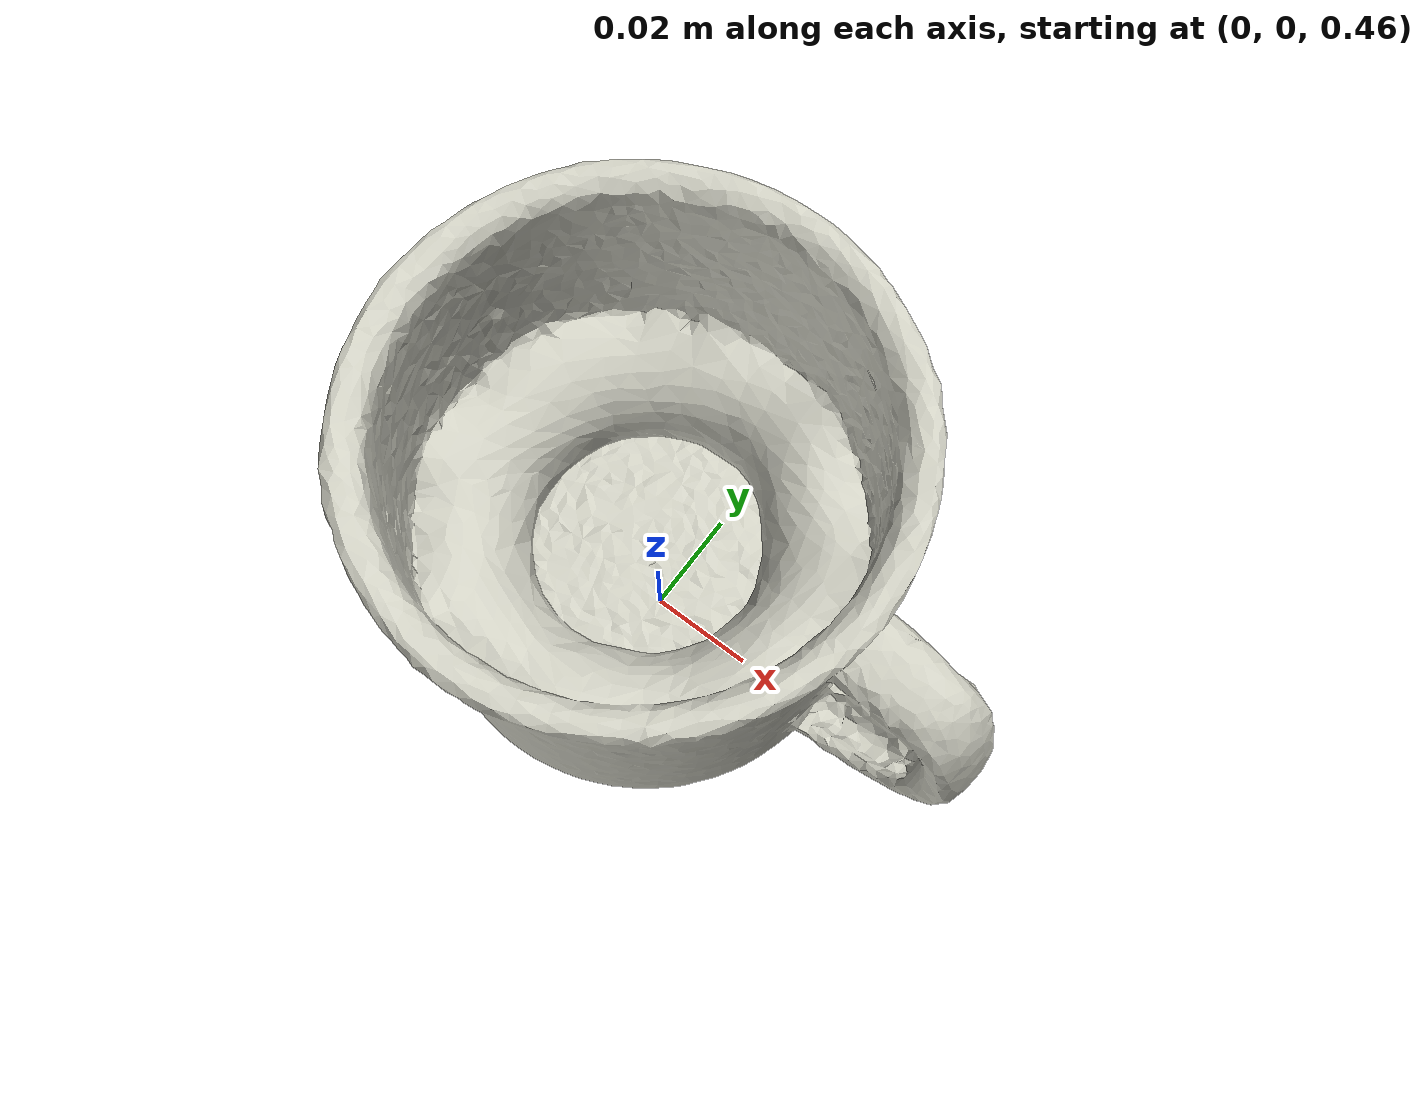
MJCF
<mujoco>
  <asset>
    <mesh name="025_mug_visual" file="objects/025_mug/visual.stl" />
    <mesh name="025_mug_col_00" file="objects/025_mug/collision/025_mug_00.stl" />
    <mesh name="025_mug_col_01" file="objects/025_mug/collision/025_mug_01.stl" />
    <mesh name="025_mug_col_02" file="objects/025_mug/collision/025_mug_02.stl" />
    <mesh name="025_mug_col_03" file="objects/025_mug/collision/025_mug_03.stl" />
    <mesh name="025_mug_col_04" file="objects/025_mug/collision/025_mug_04.stl" />
    <mesh name="025_mug_col_05" file="objects/025_mug/collision/025_mug_05.stl" />
    <mesh name="025_mug_col_06" file="objects/025_mug/collision/025_mug_06.stl" />
    <mesh name="025_mug_col_07" file="objects/025_mug/collision/025_mug_07.stl" />
    <mesh name="025_mug_col_08" file="objects/025_mug/collision/025_mug_08.stl" />
    <mesh name="025_mug_col_09" file="objects/025_mug/collision/025_mug_09.stl" />
    <mesh name="025_mug_col_10" file="objects/025_mug/collision/025_mug_10.stl" />
    <mesh name="025_mug_col_11" file="objects/025_mug/collision/025_mug_11.stl" />
    <mesh name="025_mug_col_12" file="objects/025_mug/collision/025_mug_12.stl" />
    <mesh name="025_mug_col_13" file="objects/025_mug/collision/025_mug_13.stl" />
    <mesh name="025_mug_col_14" file="objects/025_mug/collision/025_mug_14.stl" />
    <mesh name="025_mug_col_15" file="objects/025_mug/collision/025_mug_15.stl" />
    <mesh name="025_mug_col_16" file="objects/025_mug/collision/025_mug_16.stl" />
    <mesh name="025_mug_col_17" file="objects/025_mug/collision/025_mug_17.stl" />
    <mesh name="025_mug_col_18" file="objects/025_mug/collision/025_mug_18.stl" />
    <mesh name="025_mug_col_19" file="objects/025_mug/collision/025_mug_19.stl" />
    <mesh name="025_mug_col_20" file="objects/025_mug/collision/025_mug_20.stl" />
    <mesh name="025_mug_col_21" file="objects/025_mug/collision/025_mug_21.stl" />
    <mesh name="025_mug_col_22" file="objects/025_mug/collision/025_mug_22.stl" />
    <mesh name="025_mug_col_23" file="objects/025_mug/collision/025_mug_23.stl" />
    <mesh name="025_mug_col_24" file="objects/025_mug/collision/025_mug_24.stl" />
    <mesh name="025_mug_col_25" file="objects/025_mug/collision/025_mug_25.stl" />
    <mesh name="025_mug_col_26" file="objects/025_mug/collision/025_mug_26.stl" />
    <mesh name="025_mug_col_27" file="objects/025_mug/collision/025_mug_27.stl" />
    <mesh name="025_mug_col_28" file="objects/025_mug/collision/025_mug_28.stl" />
    <mesh name="025_mug_col_29" file="objects/025_mug/collision/025_mug_29.stl" />
    <mesh name="025_mug_col_30" file="objects/025_mug/collision/025_mug_30.stl" />
    <mesh name="025_mug_col_31" file="objects/025_mug/collision/025_mug_31.stl" />
  </asset>
  <worldbody>
    <body name="025_mug" pos="0 0 0.5">
      <freejoint name="025_mug_free" />
      <geom type="mesh" mesh="025_mug_visual" contype="0" conaffinity="0" group="2" rgba="0.8 0.8 0.75 1" />
      <geom type="mesh" mesh="025_mug_col_00" group="3" condim="4" friction="0.8 0.01 0.001" density="1000" solref="0.005 1" solimp="0.9 0.98 0.001" />
      <geom type="mesh" mesh="025_mug_col_01" group="3" condim="4" friction="0.8 0.01 0.001" density="1000" solref="0.005 1" solimp="0.9 0.98 0.001" />
      <geom type="mesh" mesh="025_mug_col_02" group="3" condim="4" friction="0.8 0.01 0.001" density="1000" solref="0.005 1" solimp="0.9 0.98 0.001" />
      <geom type="mesh" mesh="025_mug_col_03" group="3" condim="4" friction="0.8 0.01 0.001" density="1000" solref="0.005 1" solimp="0.9 0.98 0.001" />
      <geom type="mesh" mesh="025_mug_col_04" group="3" condim="4" friction="0.8 0.01 0.001" density="1000" solref="0.005 1" solimp="0.9 0.98 0.001" />
      <geom type="mesh" mesh="025_mug_col_05" group="3" condim="4" friction="0.8 0.01 0.001" density="1000" solref="0.005 1" solimp="0.9 0.98 0.001" />
      <geom type="mesh" mesh="025_mug_col_06" group="3" condim="4" friction="0.8 0.01 0.001" density="1000" solref="0.005 1" solimp="0.9 0.98 0.001" />
      <geom type="mesh" mesh="025_mug_col_07" group="3" condim="4" friction="0.8 0.01 0.001" density="1000" solref="0.005 1" solimp="0.9 0.98 0.001" />
      <geom type="mesh" mesh="025_mug_col_08" group="3" condim="4" friction="0.8 0.01 0.001" density="1000" solref="0.005 1" solimp="0.9 0.98 0.001" />
      <geom type="mesh" mesh="025_mug_col_09" group="3" condim="4" friction="0.8 0.01 0.001" density="1000" solref="0.005 1" solimp="0.9 0.98 0.001" />
      <geom type="mesh" mesh="025_mug_col_10" group="3" condim="4" friction="0.8 0.01 0.001" density="1000" solref="0.005 1" solimp="0.9 0.98 0.001" />
      <geom type="mesh" mesh="025_mug_col_11" group="3" condim="4" friction="0.8 0.01 0.001" density="1000" solref="0.005 1" solimp="0.9 0.98 0.001" />
      <geom type="mesh" mesh="025_mug_col_12" group="3" condim="4" friction="0.8 0.01 0.001" density="1000" solref="0.005 1" solimp="0.9 0.98 0.001" />
      <geom type="mesh" mesh="025_mug_col_13" group="3" condim="4" friction="0.8 0.01 0.001" density="1000" solref="0.005 1" solimp="0.9 0.98 0.001" />
      <geom type="mesh" mesh="025_mug_col_14" group="3" condim="4" friction="0.8 0.01 0.001" density="1000" solref="0.005 1" solimp="0.9 0.98 0.001" />
      <geom type="mesh" mesh="025_mug_col_15" group="3" condim="4" friction="0.8 0.01 0.001" density="1000" solref="0.005 1" solimp="0.9 0.98 0.001" />
      <geom type="mesh" mesh="025_mug_col_16" group="3" condim="4" friction="0.8 0.01 0.001" density="1000" solref="0.005 1" solimp="0.9 0.98 0.001" />
      <geom type="mesh" mesh="025_mug_col_17" group="3" condim="4" friction="0.8 0.01 0.001" density="1000" solref="0.005 1" solimp="0.9 0.98 0.001" />
      <geom type="mesh" mesh="025_mug_col_18" group="3" condim="4" friction="0.8 0.01 0.001" density="1000" solref="0.005 1" solimp="0.9 0.98 0.001" />
      <geom type="mesh" mesh="025_mug_col_19" group="3" condim="4" friction="0.8 0.01 0.001" density="1000" solref="0.005 1" solimp="0.9 0.98 0.001" />
      <geom type="mesh" mesh="025_mug_col_20" group="3" condim="4" friction="0.8 0.01 0.001" density="1000" solref="0.005 1" solimp="0.9 0.98 0.001" />
      <geom type="mesh" mesh="025_mug_col_21" group="3" condim="4" friction="0.8 0.01 0.001" density="1000" solref="0.005 1" solimp="0.9 0.98 0.001" />
      <geom type="mesh" mesh="025_mug_col_22" group="3" condim="4" friction="0.8 0.01 0.001" density="1000" solref="0.005 1" solimp="0.9 0.98 0.001" />
      <geom type="mesh" mesh="025_mug_col_23" group="3" condim="4" friction="0.8 0.01 0.001" density="1000" solref="0.005 1" solimp="0.9 0.98 0.001" />
      <geom type="mesh" mesh="025_mug_col_24" group="3" condim="4" friction="0.8 0.01 0.001" density="1000" solref="0.005 1" solimp="0.9 0.98 0.001" />
      <geom type="mesh" mesh="025_mug_col_25" group="3" condim="4" friction="0.8 0.01 0.001" density="1000" solref="0.005 1" solimp="0.9 0.98 0.001" />
      <geom type="mesh" mesh="025_mug_col_26" group="3" condim="4" friction="0.8 0.01 0.001" density="1000" solref="0.005 1" solimp="0.9 0.98 0.001" />
      <geom type="mesh" mesh="025_mug_col_27" group="3" condim="4" friction="0.8 0.01 0.001" density="1000" solref="0.005 1" solimp="0.9 0.98 0.001" />
      <geom type="mesh" mesh="025_mug_col_28" group="3" condim="4" friction="0.8 0.01 0.001" density="1000" solref="0.005 1" solimp="0.9 0.98 0.001" />
      <geom type="mesh" mesh="025_mug_col_29" group="3" condim="4" friction="0.8 0.01 0.001" density="1000" solref="0.005 1" solimp="0.9 0.98 0.001" />
      <geom type="mesh" mesh="025_mug_col_30" group="3" condim="4" friction="0.8 0.01 0.001" density="1000" solref="0.005 1" solimp="0.9 0.98 0.001" />
      <geom type="mesh" mesh="025_mug_col_31" group="3" condim="4" friction="0.8 0.01 0.001" density="1000" solref="0.005 1" solimp="0.9 0.98 0.001" />
    </body>
  </worldbody>
</mujoco>
